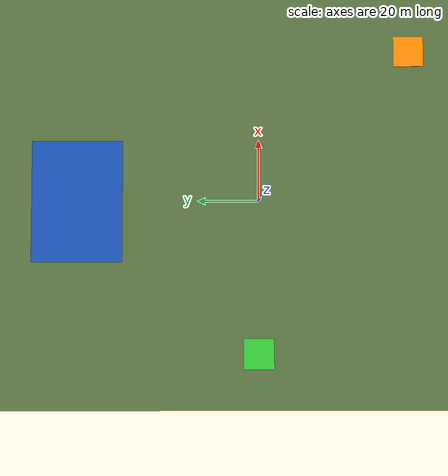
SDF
<?xml version="1.0" encoding="UTF-8"?>
<sdf version="1.9">
  <world name="lake_safe_land">

    <physics type="ode">
      <max_step_size>0.004</max_step_size>
      <real_time_factor>1.0</real_time_factor>
      <real_time_update_rate>250</real_time_update_rate>
    </physics>

    <gravity>0 0 -9.8</gravity>
    <magnetic_field>6e-06 2.3e-05 -4.2e-05</magnetic_field>
    <atmosphere type="adiabatic"/>

    <scene>
      <grid>false</grid>
      <ambient>0.4 0.4 0.4 1</ambient>
      <background>0.55 0.75 0.95 1</background>
      <shadows>true</shadows>
    </scene>

    <!-- Spherical coordinates: same origin as PX4 default SITL world (Zurich) -->
    <spherical_coordinates>
      <surface_model>EARTH_WGS84</surface_model>
      <world_frame_orientation>ENU</world_frame_orientation>
      <latitude_deg>47.397971057728974</latitude_deg>
      <longitude_deg>8.546163739800146</longitude_deg>
      <elevation>0</elevation>
    </spherical_coordinates>

    <!-- Sun -->
    <light name="sunUTC" type="directional">
      <pose>0 0 500 0 0 0</pose>
      <cast_shadows>true</cast_shadows>
      <intensity>1</intensity>
      <direction>0.001 0.625 -0.78</direction>
      <diffuse>0.904 0.904 0.904 1</diffuse>
      <specular>0.271 0.271 0.271 1</specular>
      <attenuation>
        <range>2000</range>
        <linear>0</linear>
        <constant>1</constant>
        <quadratic>0</quadratic>
      </attenuation>
      <spot>
        <inner_angle>0</inner_angle>
        <outer_angle>0</outer_angle>
        <falloff>0</falloff>
      </spot>
    </light>

    <!-- Ground plane (grey grass/terrain) -->
    <model name="ground_plane">
      <static>true</static>
      <link name="link">
        <collision name="collision">
          <geometry>
            <plane>
              <normal>0 0 1</normal>
              <size>1 1</size>
            </plane>
          </geometry>
          <surface>
            <friction>
              <ode/>
            </friction>
            <bounce/>
            <contact/>
          </surface>
        </collision>
        <visual name="visual">
          <geometry>
            <plane>
              <normal>0 0 1</normal>
              <size>500 500</size>
            </plane>
          </geometry>
          <material>
            <ambient>0.35 0.45 0.25 1</ambient>
            <diffuse>0.35 0.45 0.25 1</diffuse>
            <specular>0.1 0.1 0.1 1</specular>
          </material>
        </visual>
        <pose>0 0 0 0 0 0</pose>
      </link>
      <pose>0 0 0 0 0 0</pose>
    </model>

    <!-- Lake — visual-only (no collision), 40 m × 30 m, 60 m north of origin -->
    <!-- Drone landing here is unsafe: water, no physical surface -->
    <model name="lake">
      <static>true</static>
      <pose>0 60 0.001 0 0 0</pose>
      <link name="link">
        <visual name="visual">
          <geometry>
            <plane>
              <normal>0 0 1</normal>
              <size>40 30</size>
            </plane>
          </geometry>
          <material>
            <ambient>0.05 0.2 0.6 0.85</ambient>
            <diffuse>0.1 0.35 0.85 0.85</diffuse>
            <specular>0.6 0.7 0.9 1</specular>
          </material>
        </visual>
        <!-- No collision block: the lake is a visual hazard, not a landing surface -->
      </link>
    </model>

    <!-- Safe landing pad A — green, 10 × 10 m, 50 m west of origin -->
    <model name="safe_pad_west">
      <static>true</static>
      <pose>-50 0 0.002 0 0 0</pose>
      <link name="link">
        <visual name="visual">
          <geometry>
            <plane>
              <normal>0 0 1</normal>
              <size>10 10</size>
            </plane>
          </geometry>
          <material>
            <ambient>0.1 0.6 0.1 1</ambient>
            <diffuse>0.2 0.8 0.2 1</diffuse>
            <specular>0.05 0.2 0.05 1</specular>
          </material>
        </visual>
        <collision name="collision">
          <geometry>
            <plane>
              <normal>0 0 1</normal>
              <size>10 10</size>
            </plane>
          </geometry>
          <surface>
            <friction>
              <ode>
                <mu>1.0</mu>
                <mu2>1.0</mu2>
              </ode>
            </friction>
            <bounce/>
            <contact/>
          </surface>
        </collision>
      </link>
    </model>

    <!-- Safe landing pad B — orange, 10 × 10 m, 50 m east + 50 m south of origin -->
    <model name="safe_pad_southeast">
      <static>true</static>
      <pose>50 -50 0.002 0 0 0</pose>
      <link name="link">
        <visual name="visual">
          <geometry>
            <plane>
              <normal>0 0 1</normal>
              <size>10 10</size>
            </plane>
          </geometry>
          <material>
            <ambient>0.8 0.35 0.0 1</ambient>
            <diffuse>1.0 0.55 0.0 1</diffuse>
            <specular>0.3 0.15 0.0 1</specular>
          </material>
        </visual>
        <collision name="collision">
          <geometry>
            <plane>
              <normal>0 0 1</normal>
              <size>10 10</size>
            </plane>
          </geometry>
          <surface>
            <friction>
              <ode>
                <mu>1.0</mu>
                <mu2>1.0</mu2>
              </ode>
            </friction>
            <bounce/>
            <contact/>
          </surface>
        </collision>
      </link>
    </model>

  </world>
</sdf>
